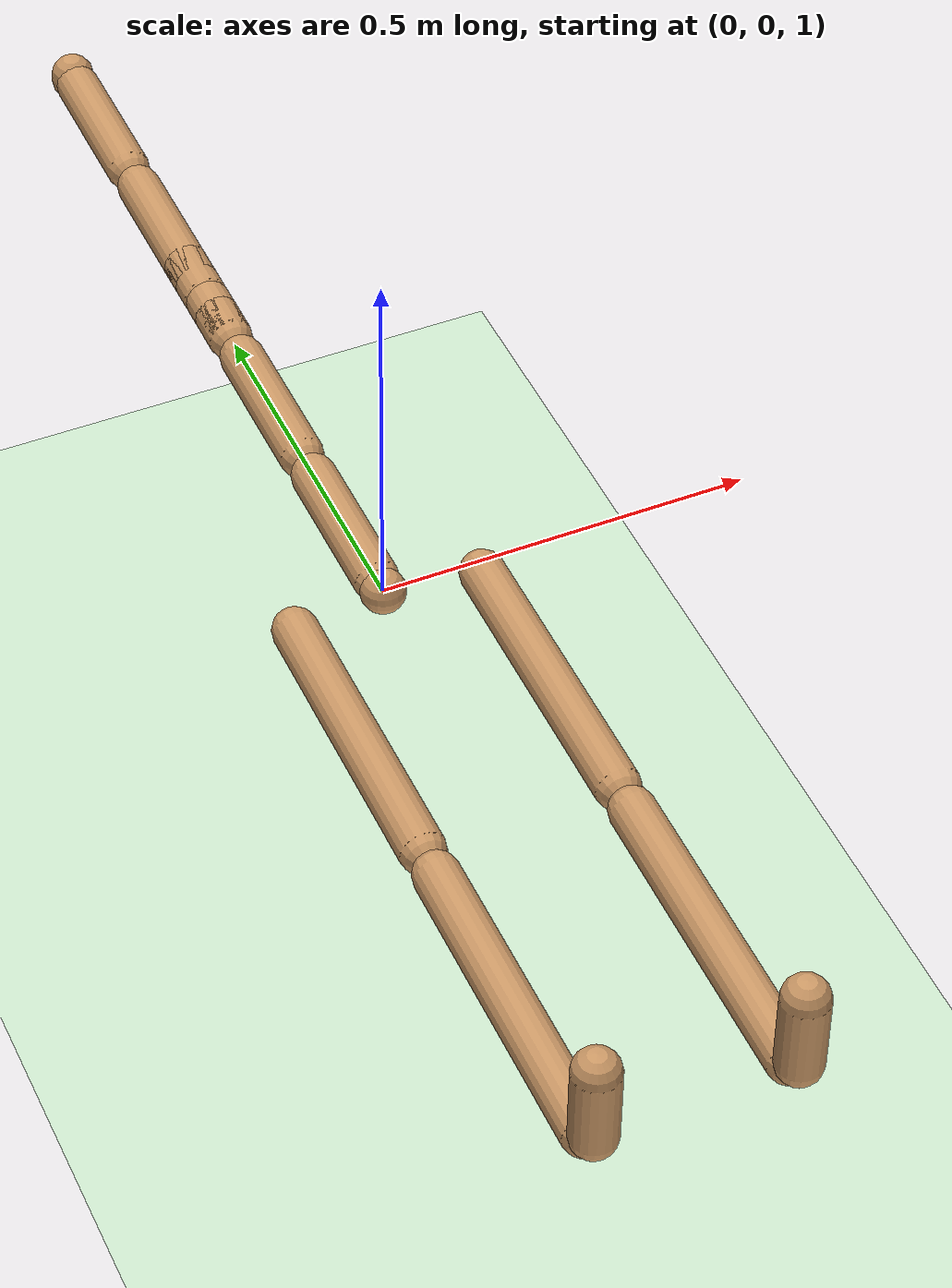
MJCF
<mujoco model="humanoid">
  <compiler angle="degree" inertiafromgeom="true" coordinate="global"/>
  <include file="./common/materials.xml"/>
  <visual>
    <headlight ambient=".4 .4 .4" diffuse=".8 .8 .8" specular="0.1 0.1 0.1"/>
    <map znear=".01"/>
    <quality shadowsize="2048"/>
  </visual>
  <default>
    <joint damping="0.0" armature="0.01" stiffness="0.0" limited="true"/>
    <geom conaffinity="7" condim="1" contype="7" margin="0.001" material="self" rgba="0.8 0.6 .4 1"/>
  </default>
  <statistic extent="3" center="0 0 1"/>
  <option timestep="0.00222222222"/>
  <asset>
    <texture type="skybox" file="./common/sky1.png" gridsize="3 4" gridlayout=".U..LFRB.D.." width="8192" height="8192"/>
    <texture builtin="flat" height="1278" mark="cross" markrgb="1 1 1" name="texgeom" random="0.01" rgb1=".8 .6 .4" rgb2=".8 .6 .4" type="cube" width="127"/>
  </asset>
  <worldbody>
    <light cutoff="100" diffuse="1 1 1" dir="-0 0 -1.3" directional="true" exponent="1" pos="0 0 1.3" specular=".1 .1 .1"/>
    <geom condim="3" friction="1. .1 .1" material="grid" name="floor" pos="0 0 0" rgba=".8 .9 .8 1" size="100 100 .2" type="plane"/>
    <body name="Hips" pos="0.0000 0.0000 1.0000" user="0.0000 0.0003 1.0000">
      <joint name="Hips" pos="0.0000 0.0000 1.0000" limited="false" type="free" armature="0" damping="0" stiffness="0"/>
      <geom size="0.0300" type="sphere" pos="0.0000 0.0000 1.0000"/>
      <body name="RightUpLeg" pos="-0.1272 0.0000 1.0000" user="-0.1272 -0.4343 1.0000">
        <joint name="RightUpLeg_z" type="hinge" pos="-0.1272 0.0000 1.0000" axis="0.0000 0.0000 1.0000" range="-180.0000 180.0000"/>
        <joint name="RightUpLeg_x" type="hinge" pos="-0.1272 0.0000 1.0000" axis="1.0000 0.0000 0.0000" range="-180.0000 180.0000"/>
        <joint name="RightUpLeg_y" type="hinge" pos="-0.1272 0.0000 1.0000" axis="0.0000 1.0000 0.0000" range="-180.0000 180.0000"/>
        <geom size="0.0300" type="capsule" fromto="-0.1272 -0.0200 1.0000 -0.1272 -0.4143 1.0000"/>
        <body name="RightLeg" pos="-0.1272 -0.4343 1.0000" user="-0.1272 -0.8831 1.0000">
          <joint name="RightLeg_x" type="hinge" pos="-0.1272 -0.4343 1.0000" axis="1.0000 0.0000 0.0000" range="-180.0000 180.0000"/>
          <geom size="0.0300" type="capsule" fromto="-0.1272 -0.4543 1.0000 -0.1272 -0.8631 1.0000"/>
          <body name="RightFoot" pos="-0.1272 -0.8831 1.0000" user="-0.1272 -0.8831 1.1515">
            <joint name="RightFoot_z" type="hinge" pos="-0.1272 -0.8831 1.0000" axis="0.0000 0.0000 1.0000" range="-180.0000 180.0000"/>
            <joint name="RightFoot_x" type="hinge" pos="-0.1272 -0.8831 1.0000" axis="1.0000 0.0000 0.0000" range="-180.0000 180.0000"/>
            <joint name="RightFoot_y" type="hinge" pos="-0.1272 -0.8831 1.0000" axis="0.0000 1.0000 0.0000" range="-180.0000 180.0000"/>
            <geom size="0.0300" type="capsule" fromto="-0.1272 -0.8831 1.0200 -0.1272 -0.8831 1.1315"/>
          </body>
        </body>
      </body>
      <body name="LeftUpLeg" pos="0.1272 0.0000 1.0000" user="0.1272 -0.4343 1.0000">
        <joint name="LeftUpLeg_z" type="hinge" pos="0.1272 0.0000 1.0000" axis="0.0000 0.0000 1.0000" range="-180.0000 180.0000"/>
        <joint name="LeftUpLeg_x" type="hinge" pos="0.1272 0.0000 1.0000" axis="1.0000 0.0000 0.0000" range="-180.0000 180.0000"/>
        <joint name="LeftUpLeg_y" type="hinge" pos="0.1272 0.0000 1.0000" axis="0.0000 1.0000 0.0000" range="-180.0000 180.0000"/>
        <geom size="0.0300" type="capsule" fromto="0.1272 -0.0200 1.0000 0.1272 -0.4143 1.0000"/>
        <body name="LeftLeg" pos="0.1272 -0.4343 1.0000" user="0.1272 -0.8831 1.0000">
          <joint name="LeftLeg_x" type="hinge" pos="0.1272 -0.4343 1.0000" axis="1.0000 0.0000 0.0000" range="-180.0000 180.0000"/>
          <geom size="0.0300" type="capsule" fromto="0.1272 -0.4543 1.0000 0.1272 -0.8631 1.0000"/>
          <body name="LeftFoot" pos="0.1272 -0.8831 1.0000" user="0.1272 -0.8831 1.1515">
            <joint name="LeftFoot_z" type="hinge" pos="0.1272 -0.8831 1.0000" axis="0.0000 0.0000 1.0000" range="-180.0000 180.0000"/>
            <joint name="LeftFoot_x" type="hinge" pos="0.1272 -0.8831 1.0000" axis="1.0000 0.0000 0.0000" range="-180.0000 180.0000"/>
            <joint name="LeftFoot_y" type="hinge" pos="0.1272 -0.8831 1.0000" axis="0.0000 1.0000 0.0000" range="-180.0000 180.0000"/>
            <geom size="0.0300" type="capsule" fromto="0.1272 -0.8831 1.0200 0.1272 -0.8831 1.1315"/>
          </body>
        </body>
      </body>
      <body name="Spine" pos="0.0000 0.0010 1.0000" user="0.0000 0.2469 1.0000">
        <joint name="Spine_z" type="hinge" pos="0.0000 0.0010 1.0000" axis="0.0000 0.0000 1.0000" range="-180.0000 180.0000"/>
        <joint name="Spine_x" type="hinge" pos="0.0000 0.0010 1.0000" axis="1.0000 0.0000 0.0000" range="-180.0000 180.0000"/>
        <joint name="Spine_y" type="hinge" pos="0.0000 0.0010 1.0000" axis="0.0000 1.0000 0.0000" range="-180.0000 180.0000"/>
        <geom size="0.0300" type="capsule" fromto="0.0000 0.0210 1.0000 0.0000 0.2269 1.0000"/>
        <body name="Spine1" pos="0.0000 0.2469 1.0000" user="0.0000 0.4954 1.0000">
          <joint name="Spine1_z" type="hinge" pos="0.0000 0.2469 1.0000" axis="0.0000 0.0000 1.0000" range="-180.0000 180.0000"/>
          <joint name="Spine1_x" type="hinge" pos="0.0000 0.2469 1.0000" axis="1.0000 0.0000 0.0000" range="-180.0000 180.0000"/>
          <joint name="Spine1_y" type="hinge" pos="0.0000 0.2469 1.0000" axis="0.0000 1.0000 0.0000" range="-180.0000 180.0000"/>
          <geom size="0.0300" type="capsule" fromto="0.0000 0.2669 1.0000 0.0000 0.4754 1.0000"/>
          <body name="Neck" pos="0.0000 0.4954 1.0000" user="0.0000 0.5881 1.0000">
            <joint name="Neck_z" type="hinge" pos="0.0000 0.4954 1.0000" axis="0.0000 0.0000 1.0000" range="-180.0000 180.0000"/>
            <joint name="Neck_x" type="hinge" pos="0.0000 0.4954 1.0000" axis="1.0000 0.0000 0.0000" range="-180.0000 180.0000"/>
            <joint name="Neck_y" type="hinge" pos="0.0000 0.4954 1.0000" axis="0.0000 1.0000 0.0000" range="-180.0000 180.0000"/>
            <geom size="0.0300" type="capsule" fromto="0.0000 0.5154 1.0000 0.0000 0.5681 1.0000"/>
            <body name="Head" pos="0.0000 0.5881 1.0000" user="0.0000 0.7031 1.0000">
              <joint name="Head_z" type="hinge" pos="0.0000 0.5881 1.0000" axis="0.0000 0.0000 1.0000" range="-180.0000 180.0000"/>
              <joint name="Head_x" type="hinge" pos="0.0000 0.5881 1.0000" axis="1.0000 0.0000 0.0000" range="-180.0000 180.0000"/>
              <joint name="Head_y" type="hinge" pos="0.0000 0.5881 1.0000" axis="0.0000 1.0000 0.0000" range="-180.0000 180.0000"/>
              <geom size="0.0300" type="capsule" fromto="0.0000 0.6081 1.0000 0.0000 0.6831 1.0000"/>
            </body>
          </body>
          <body name="LeftShoulder" pos="0.0000 0.4954 1.0000" user="0.0000 0.6203 1.0000">
            <joint name="LeftShoulder_z" type="hinge" pos="0.0000 0.4954 1.0000" axis="0.0000 0.0000 1.0000" range="-180.0000 180.0000"/>
            <joint name="LeftShoulder_x" type="hinge" pos="0.0000 0.4954 1.0000" axis="1.0000 0.0000 0.0000" range="-180.0000 180.0000"/>
            <joint name="LeftShoulder_y" type="hinge" pos="0.0000 0.4954 1.0000" axis="0.0000 1.0000 0.0000" range="-180.0000 180.0000"/>
            <geom size="0.0300" type="capsule" fromto="0.0000 0.5154 1.0000 0.0000 0.6003 1.0000"/>
            <body name="LeftArm" pos="0.0000 0.6203 1.0000" user="0.0000 0.8800 1.0000">
              <joint name="LeftArm_z" type="hinge" pos="0.0000 0.6203 1.0000" axis="0.0000 0.0000 1.0000" range="-180.0000 180.0000"/>
              <joint name="LeftArm_x" type="hinge" pos="0.0000 0.6203 1.0000" axis="1.0000 0.0000 0.0000" range="-180.0000 180.0000"/>
              <joint name="LeftArm_y" type="hinge" pos="0.0000 0.6203 1.0000" axis="0.0000 1.0000 0.0000" range="-180.0000 180.0000"/>
              <geom size="0.0300" type="capsule" fromto="0.0000 0.6403 1.0000 0.0000 0.8600 1.0000"/>
              <body name="LeftForeArm" pos="0.0000 0.8800 1.0000" user="0.0000 1.1256 1.0000">
                <joint name="LeftForeArm_x" type="hinge" pos="0.0000 0.8800 1.0000" axis="1.0000 0.0000 0.0000" range="-180.0000 180.0000"/>
                <geom size="0.0300" type="capsule" fromto="0.0000 0.9000 1.0000 0.0000 1.1056 1.0000"/>
                <body name="LeftHand" pos="0.0000 1.1256 1.0000" user="0.0000 1.1256 1.0000">
                  <joint name="LeftHand_z" type="hinge" pos="0.0000 1.1256 1.0000" axis="0.0000 0.0000 1.0000" range="-180.0000 180.0000"/>
                  <joint name="LeftHand_x" type="hinge" pos="0.0000 1.1256 1.0000" axis="1.0000 0.0000 0.0000" range="-180.0000 180.0000"/>
                  <joint name="LeftHand_y" type="hinge" pos="0.0000 1.1256 1.0000" axis="0.0000 1.0000 0.0000" range="-180.0000 180.0000"/>
                  <geom size="0.0300" type="capsule" fromto="0.0000 1.1256 1.0040 0.0000 1.1256 0.9960"/>
                </body>
              </body>
            </body>
          </body>
          <body name="RightShoulder" pos="0.0000 0.4954 1.0000" user="0.0000 0.6203 1.0000">
            <joint name="RightShoulder_z" type="hinge" pos="0.0000 0.4954 1.0000" axis="0.0000 0.0000 1.0000" range="-180.0000 180.0000"/>
            <joint name="RightShoulder_x" type="hinge" pos="0.0000 0.4954 1.0000" axis="1.0000 0.0000 0.0000" range="-180.0000 180.0000"/>
            <joint name="RightShoulder_y" type="hinge" pos="0.0000 0.4954 1.0000" axis="0.0000 1.0000 0.0000" range="-180.0000 180.0000"/>
            <geom size="0.0300" type="capsule" fromto="0.0000 0.5154 1.0000 0.0000 0.6003 1.0000"/>
            <body name="RightArm" pos="0.0000 0.6203 1.0000" user="0.0000 0.8800 1.0000">
              <joint name="RightArm_z" type="hinge" pos="0.0000 0.6203 1.0000" axis="0.0000 0.0000 1.0000" range="-180.0000 180.0000"/>
              <joint name="RightArm_x" type="hinge" pos="0.0000 0.6203 1.0000" axis="1.0000 0.0000 0.0000" range="-180.0000 180.0000"/>
              <joint name="RightArm_y" type="hinge" pos="0.0000 0.6203 1.0000" axis="0.0000 1.0000 0.0000" range="-180.0000 180.0000"/>
              <geom size="0.0300" type="capsule" fromto="0.0000 0.6403 1.0000 0.0000 0.8600 1.0000"/>
              <body name="RightForeArm" pos="0.0000 0.8800 1.0000" user="0.0000 1.1256 1.0000">
                <joint name="RightForeArm_x" type="hinge" pos="0.0000 0.8800 1.0000" axis="1.0000 0.0000 0.0000" range="-180.0000 180.0000"/>
                <geom size="0.0300" type="capsule" fromto="0.0000 0.9000 1.0000 0.0000 1.1056 1.0000"/>
                <body name="RightHand" pos="0.0000 1.1256 1.0000" user="0.0000 1.1256 1.0000">
                  <joint name="RightHand_z" type="hinge" pos="0.0000 1.1256 1.0000" axis="0.0000 0.0000 1.0000" range="-180.0000 180.0000"/>
                  <joint name="RightHand_x" type="hinge" pos="0.0000 1.1256 1.0000" axis="1.0000 0.0000 0.0000" range="-180.0000 180.0000"/>
                  <joint name="RightHand_y" type="hinge" pos="0.0000 1.1256 1.0000" axis="0.0000 1.0000 0.0000" range="-180.0000 180.0000"/>
                  <geom size="0.0300" type="capsule" fromto="0.0000 1.1256 1.0040 0.0000 1.1256 0.9960"/>
                </body>
              </body>
            </body>
          </body>
        </body>
      </body>
    </body>
  </worldbody>
  <actuator>
    <motor name="RightUpLeg_z" joint="RightUpLeg_z" gear="1"/>
    <motor name="RightUpLeg_x" joint="RightUpLeg_x" gear="1"/>
    <motor name="RightUpLeg_y" joint="RightUpLeg_y" gear="1"/>
    <motor name="RightLeg_x" joint="RightLeg_x" gear="1"/>
    <motor name="RightFoot_z" joint="RightFoot_z" gear="1"/>
    <motor name="RightFoot_x" joint="RightFoot_x" gear="1"/>
    <motor name="RightFoot_y" joint="RightFoot_y" gear="1"/>
    <motor name="LeftUpLeg_z" joint="LeftUpLeg_z" gear="1"/>
    <motor name="LeftUpLeg_x" joint="LeftUpLeg_x" gear="1"/>
    <motor name="LeftUpLeg_y" joint="LeftUpLeg_y" gear="1"/>
    <motor name="LeftLeg_x" joint="LeftLeg_x" gear="1"/>
    <motor name="LeftFoot_z" joint="LeftFoot_z" gear="1"/>
    <motor name="LeftFoot_x" joint="LeftFoot_x" gear="1"/>
    <motor name="LeftFoot_y" joint="LeftFoot_y" gear="1"/>
    <motor name="Spine_z" joint="Spine_z" gear="1"/>
    <motor name="Spine_x" joint="Spine_x" gear="1"/>
    <motor name="Spine_y" joint="Spine_y" gear="1"/>
    <motor name="Spine1_z" joint="Spine1_z" gear="1"/>
    <motor name="Spine1_x" joint="Spine1_x" gear="1"/>
    <motor name="Spine1_y" joint="Spine1_y" gear="1"/>
    <motor name="Neck_z" joint="Neck_z" gear="1"/>
    <motor name="Neck_x" joint="Neck_x" gear="1"/>
    <motor name="Neck_y" joint="Neck_y" gear="1"/>
    <motor name="Head_z" joint="Head_z" gear="1"/>
    <motor name="Head_x" joint="Head_x" gear="1"/>
    <motor name="Head_y" joint="Head_y" gear="1"/>
    <motor name="LeftShoulder_z" joint="LeftShoulder_z" gear="1"/>
    <motor name="LeftShoulder_x" joint="LeftShoulder_x" gear="1"/>
    <motor name="LeftShoulder_y" joint="LeftShoulder_y" gear="1"/>
    <motor name="LeftArm_z" joint="LeftArm_z" gear="1"/>
    <motor name="LeftArm_x" joint="LeftArm_x" gear="1"/>
    <motor name="LeftArm_y" joint="LeftArm_y" gear="1"/>
    <motor name="LeftForeArm_x" joint="LeftForeArm_x" gear="1"/>
    <motor name="LeftHand_z" joint="LeftHand_z" gear="1"/>
    <motor name="LeftHand_x" joint="LeftHand_x" gear="1"/>
    <motor name="LeftHand_y" joint="LeftHand_y" gear="1"/>
    <motor name="RightShoulder_z" joint="RightShoulder_z" gear="1"/>
    <motor name="RightShoulder_x" joint="RightShoulder_x" gear="1"/>
    <motor name="RightShoulder_y" joint="RightShoulder_y" gear="1"/>
    <motor name="RightArm_z" joint="RightArm_z" gear="1"/>
    <motor name="RightArm_x" joint="RightArm_x" gear="1"/>
    <motor name="RightArm_y" joint="RightArm_y" gear="1"/>
    <motor name="RightForeArm_x" joint="RightForeArm_x" gear="1"/>
    <motor name="RightHand_z" joint="RightHand_z" gear="1"/>
    <motor name="RightHand_x" joint="RightHand_x" gear="1"/>
    <motor name="RightHand_y" joint="RightHand_y" gear="1"/>
  </actuator>
</mujoco>

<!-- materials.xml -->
<!--
Common textures, colors and materials to be used throughout this suite. Some
materials such as xxx_highlight are activated on occurence of certain events,
for example receiving a positive reward.
-->
<mujoco>
  <asset>
    <texture name="grid" type="2d" builtin="checker" rgb1=".1 .2 .3" rgb2=".2 .3 .4" width="300" height="300" mark="edge" markrgb=".2 .3 .4"/>
    <material name="grid" texture="grid" texrepeat="1 1" texuniform="true" reflectance=".2"/>
    <texture builtin="checker" height="100" name="texplane" rgb1="0 0 0" rgb2=".8 .8 .8" type="2d" width="100"/>
    <texture name="grass" file="./common/grass.png" type="2d"/>

    <texture name="grid_new" type="2d" builtin="checker" rgb1=".1 .3 .2" rgb2=".2 .4 .3" width="1000" height="1000" mark="none" markrgb=".8 .6 .4"/>
    <material name="grid_new" texture="grid_new" texrepeat="0.2 0.2" texuniform="true" reflectance=".2"/>
    <material name="MatPlane" reflectance="0.5" shininess="1" specular="1" texrepeat="60 60" texture="texplane"/>
    <material name="GrassPlane" reflectance="0.0" shininess="1" specular="1" texrepeat="400 400" texture="grass"/>
    <material name="self" rgba=".7 .5 .3 1"/>
    <material name="self_default" rgba=".7 .5 .3 1"/>
    <material name="self_highlight" rgba="0 .5 .3 1"/>
    <material name="effector" rgba=".7 .4 .2 1"/>
    <material name="effector_default" rgba=".7 .4 .2 1"/>
    <material name="effector_highlight" rgba="0 .5 .3 1"/>
    <material name="decoration" rgba=".3 .5 .7 1"/>
    <material name="eye" rgba="0 .2 1 1"/>
    <material name="target" rgba=".6 .3 .3 1"/>
    <material name="target_default" rgba=".6 .3 .3 1"/>
    <material name="target_highlight" rgba=".6 .3 .3 .4"/>
    <material name="expert" rgba=".6 .3 .3 .4"/>
  </asset>
</mujoco>
